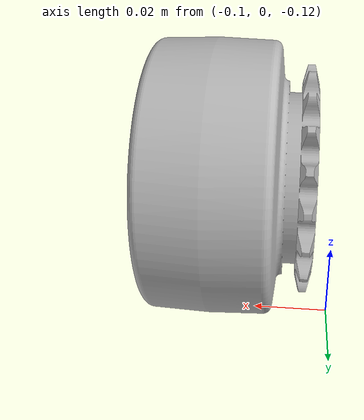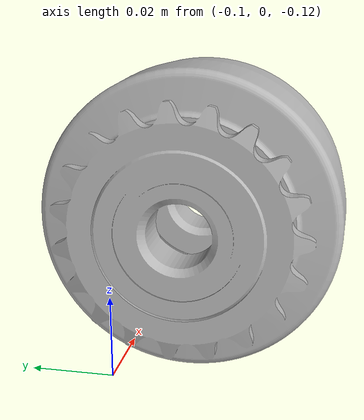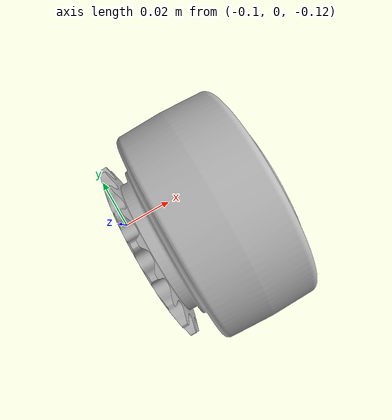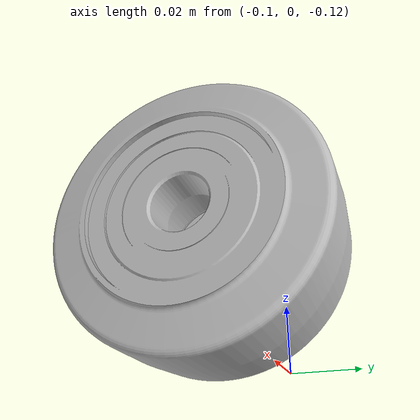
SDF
<?xml version='1.0'?>
<sdf version="1.6">
  <model name="wheel">
    <pose>-0.073 -0.012 -0.085 0 0 0</pose>
    <link name="wheel_link">
      <inertial>
        <mass>0.411</mass>
        <inertia>
          <ixx>0.002018</ixx>
          <ixy>0</ixy>
          <ixz>0</ixz>
          <iyy>0.001811</iyy>
          <iyz>0</iyz>
          <izz>0.001811</izz>
        </inertia>
      </inertial>
      <visual name="wheel_visual">
        <geometry>
          <mesh>
            <uri>file://meshes/BSWheel.stl</uri>
            <scale>0.001 0.001 0.001</scale>
          </mesh>
        </geometry>
        <pose>-0.073 -0.012 -0.085 0 0 0</pose>
      </visual>

      <!-- "Fake" collision box -->
      <collision name="wheel_collision">
        <geometry>
          <cylinder>
            <radius>0.038</radius>
            <length>0.044</length>
          </cylinder>
        </geometry>
        <pose>0 0 0 1.57 0 0</pose>
      </collision>

      <!-- "True" collision box, however makes things VERY laggy.
           Use the optimized cylinder collision box above -->

    </link>
  </model>
</sdf>
